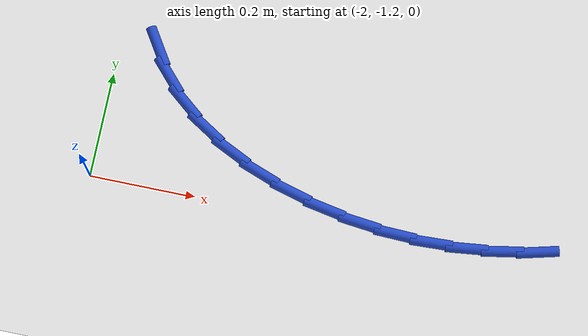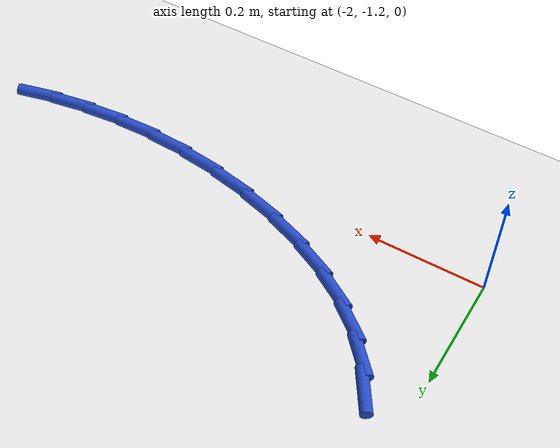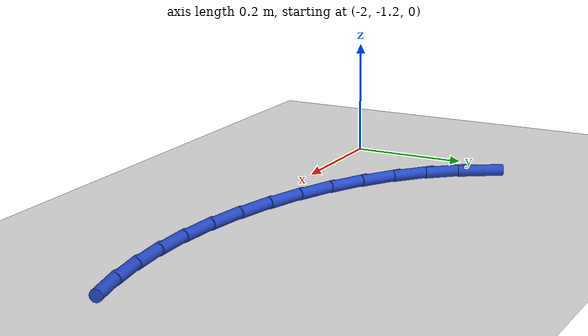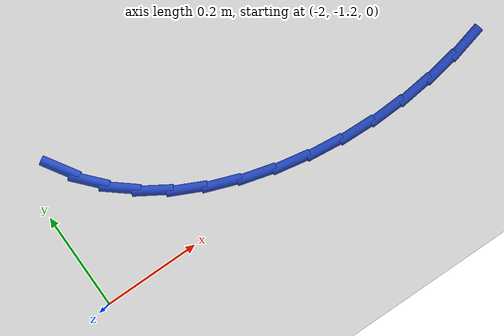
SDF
<sdf version="1.6">
 <world name="default">
  <model name="ground_plane">
   <static>1</static>
   <link name="link">
    <collision name="collision">
     <geometry><plane><normal>0 0 1</normal><size>100 100</size></plane></geometry>
     <surface><friction><ode><mu>100</mu><mu2>50</mu2></ode></friction></surface>
    </collision>
    <visual name="visual">
     <cast_shadows>0</cast_shadows>
     <geometry><plane><normal>0 0 1</normal><size>100 100</size></plane></geometry>
     <material>
      <script><uri>file://media/materials/scripts/gazebo.material</uri><name>Gazebo/WhiteGlow</name></script>
     </material>
    </visual>
   </link>
  </model>
  <model name="line">
   <link name="link_70">
    <pose>-1.9280671268488816 -0.9327901116141817 0.01 0 1.57 -1.005680356512725</pose>
    <collision name="collision">
     <geometry><cylinder><radius>0.01</radius><length>0.08</length></cylinder></geometry>
    </collision>
    <visual name="visual">
     <material>
      <script><name>Gazebo/Blue</name><uri>file://media/materials/scripts/gazebo.material</uri></script>
     </material>
     <geometry><cylinder><radius>0.01</radius><length>0.08</length></cylinder></geometry>
    </visual>
   </link>
   <link name="link_71">
    <pose>-1.896160920038517 -0.9831074690314004 0.01 0 1.57 -0.8341011878212392</pose>
    <collision name="collision">
     <geometry><cylinder><radius>0.01</radius><length>0.08</length></cylinder></geometry>
    </collision>
    <visual name="visual">
     <material>
      <script><name>Gazebo/Blue</name><uri>file://media/materials/scripts/gazebo.material</uri></script>
     </material>
     <geometry><cylinder><radius>0.01</radius><length>0.08</length></cylinder></geometry>
    </visual>
   </link>
   <link name="link_72">
    <pose>-1.855243413030664 -1.0282181235773724 0.01 0 1.57 -0.6844860440899845</pose>
    <collision name="collision">
     <geometry><cylinder><radius>0.01</radius><length>0.08</length></cylinder></geometry>
    </collision>
    <visual name="visual">
     <material>
      <script><name>Gazebo/Blue</name><uri>file://media/materials/scripts/gazebo.material</uri></script>
     </material>
     <geometry><cylinder><radius>0.01</radius><length>0.08</length></cylinder></geometry>
    </visual>
   </link>
   <link name="link_73">
    <pose>-1.806421473118282 -1.068062102083504 0.01 0 1.57 -0.5573711798025683</pose>
    <collision name="collision">
     <geometry><cylinder><radius>0.01</radius><length>0.08</length></cylinder></geometry>
    </collision>
    <visual name="visual">
     <material>
      <script><name>Gazebo/Blue</name><uri>file://media/materials/scripts/gazebo.material</uri></script>
     </material>
     <geometry><cylinder><radius>0.01</radius><length>0.08</length></cylinder></geometry>
    </visual>
   </link>
   <link name="link_74">
    <pose>-1.7509740257602058 -1.1026221319033942 0.01 0 1.57 -0.4485578717687283</pose>
    <collision name="collision">
     <geometry><cylinder><radius>0.01</radius><length>0.08</length></cylinder></geometry>
    </collision>
    <visual name="visual">
     <material>
      <script><name>Gazebo/Blue</name><uri>file://media/materials/scripts/gazebo.material</uri></script>
     </material>
     <geometry><cylinder><radius>0.01</radius><length>0.08</length></cylinder></geometry>
    </visual>
   </link>
   <link name="link_75">
    <pose>-1.6901799964152748 -1.131880940390642 0.01 0 1.57 -0.35358624619625517</pose>
    <collision name="collision">
     <geometry><cylinder><radius>0.01</radius><length>0.08</length></cylinder></geometry>
    </collision>
    <visual name="visual">
     <material>
      <script><name>Gazebo/Blue</name><uri>file://media/materials/scripts/gazebo.material</uri></script>
     </material>
     <geometry><cylinder><radius>0.01</radius><length>0.08</length></cylinder></geometry>
    </visual>
   </link>
   <link name="link_76">
    <pose>-1.625318310542326 -1.1558212548988465 0.01 0 1.57 -0.26837560014547013</pose>
    <collision name="collision">
     <geometry><cylinder><radius>0.01</radius><length>0.08</length></cylinder></geometry>
    </collision>
    <visual name="visual">
     <material>
      <script><name>Gazebo/Blue</name><uri>file://media/materials/scripts/gazebo.material</uri></script>
     </material>
     <geometry><cylinder><radius>0.01</radius><length>0.08</length></cylinder></geometry>
    </visual>
   </link>
   <link name="link_77">
    <pose>-1.5576678936001978 -1.1744258027816061 0.01 0 1.57 -0.18931146272243493</pose>
    <collision name="collision">
     <geometry><cylinder><radius>0.01</radius><length>0.08</length></cylinder></geometry>
    </collision>
    <visual name="visual">
     <material>
      <script><name>Gazebo/Blue</name><uri>file://media/materials/scripts/gazebo.material</uri></script>
     </material>
     <geometry><cylinder><radius>0.01</radius><length>0.08</length></cylinder></geometry>
    </visual>
   </link>
   <link name="link_78">
    <pose>-1.4885076710477274 -1.1876773113925208 0.01 0 1.57 -0.11309185393583315</pose>
    <collision name="collision">
     <geometry><cylinder><radius>0.01</radius><length>0.08</length></cylinder></geometry>
    </collision>
    <visual name="visual">
     <material>
      <script><name>Gazebo/Blue</name><uri>file://media/materials/scripts/gazebo.material</uri></script>
     </material>
     <geometry><cylinder><radius>0.01</radius><length>0.08</length></cylinder></geometry>
    </visual>
   </link>
   <link name="link_79">
    <pose>-1.4191165683437528 -1.1955585080851887 0.01 0 1.57 -0.0366881057403734</pose>
    <collision name="collision">
     <geometry><cylinder><radius>0.01</radius><length>0.08</length></cylinder></geometry>
    </collision>
    <visual name="visual">
     <material>
      <script><name>Gazebo/Blue</name><uri>file://media/materials/scripts/gazebo.material</uri></script>
     </material>
     <geometry><cylinder><radius>0.01</radius><length>0.08</length></cylinder></geometry>
    </visual>
   </link>
   <link name="link_80">
    <pose>-1.3507131882798902 -1.1980692251164233 0.01 0 1.57 0.039447631529221296</pose>
    <collision name="collision">
     <geometry><cylinder><radius>0.01</radius><length>0.08</length></cylinder></geometry>
    </collision>
    <visual name="visual">
     <material>
      <script><name>Gazebo/Blue</name><uri>file://media/materials/scripts/gazebo.material</uri></script>
     </material>
     <geometry><cylinder><radius>0.01</radius><length>0.08</length></cylinder></geometry>
    </visual>
   </link>
   <link name="link_81">
    <pose>-1.2837506880343268 -1.1954263420610105 0.01 0 1.57 0.11279702990188056</pose>
    <collision name="collision">
     <geometry><cylinder><radius>0.01</radius><length>0.08</length></cylinder></geometry>
    </collision>
    <visual name="visual">
     <material>
      <script><name>Gazebo/Blue</name><uri>file://media/materials/scripts/gazebo.material</uri></script>
     </material>
     <geometry><cylinder><radius>0.01</radius><length>0.08</length></cylinder></geometry>
    </visual>
   </link>
   <link name="link_82">
    <pose>-1.218156092383102 -1.1879959269204277 0.01 0 1.57 0.1822039026610994</pose>
    <collision name="collision">
     <geometry><cylinder><radius>0.01</radius><length>0.08</length></cylinder></geometry>
    </collision>
    <visual name="visual">
     <material>
      <script><name>Gazebo/Blue</name><uri>file://media/materials/scripts/gazebo.material</uri></script>
     </material>
     <geometry><cylinder><radius>0.01</radius><length>0.08</length></cylinder></geometry>
    </visual>
   </link>
   <link name="link_83">
    <pose>-1.153846084987427 -1.1761469799897057 0.01 0 1.57 0.24678677817665193</pose>
    <collision name="collision">
     <geometry><cylinder><radius>0.01</radius><length>0.08</length></cylinder></geometry>
    </collision>
    <visual name="visual">
     <material>
      <script><name>Gazebo/Blue</name><uri>file://media/materials/scripts/gazebo.material</uri></script>
     </material>
     <geometry><cylinder><radius>0.01</radius><length>0.08</length></cylinder></geometry>
    </visual>
   </link>
  </model>
 </world>
</sdf>
